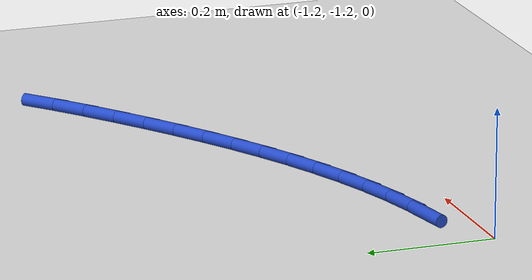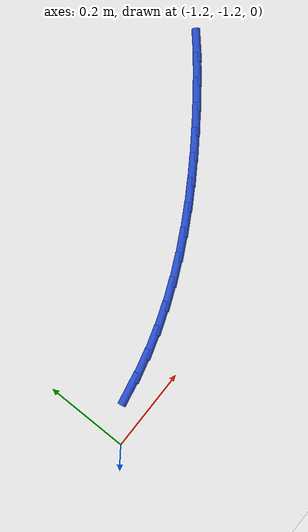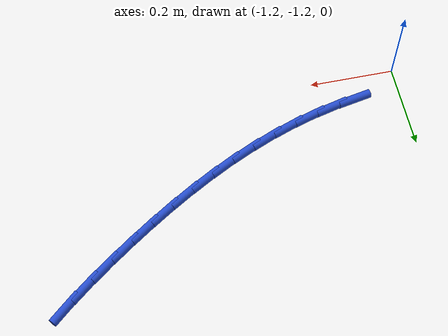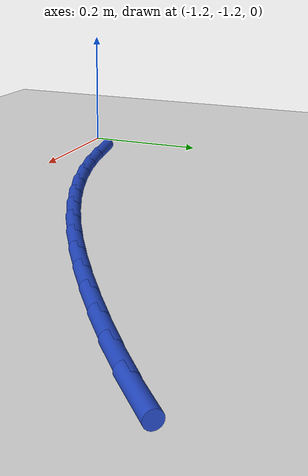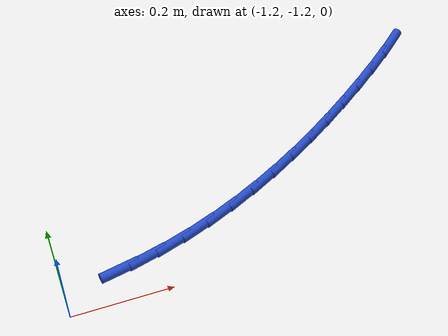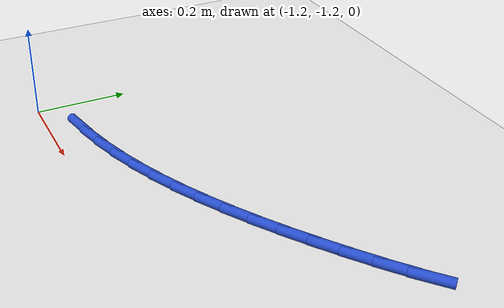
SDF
<sdf version="1.6">
 <world name="default">
  <model name="ground_plane">
   <static>1</static>
   <link name="link">
    <collision name="collision">
     <geometry><plane><normal>0 0 1</normal><size>100 100</size></plane></geometry>
     <surface><friction><ode><mu>100</mu><mu2>50</mu2></ode></friction></surface>
    </collision>
    <visual name="visual">
     <cast_shadows>0</cast_shadows>
     <geometry><plane><normal>0 0 1</normal><size>100 100</size></plane></geometry>
     <material>
      <script><uri>file://media/materials/scripts/gazebo.material</uri><name>Gazebo/WhiteGlow</name></script>
     </material>
    </visual>
   </link>
  </model>
  <model name="line">
   <link name="link_91">
    <pose>-1.0885171950400823 -1.1367272326035065 0.01 0 1.57 0.1902524878991473</pose>
    <collision name="collision">
     <geometry><cylinder><radius>0.01</radius><length>0.08</length></cylinder></geometry>
    </collision>
    <visual name="visual">
     <material>
      <script><name>Gazebo/Blue</name><uri>file://media/materials/scripts/gazebo.material</uri></script>
     </material>
     <geometry><cylinder><radius>0.01</radius><length>0.08</length></cylinder></geometry>
    </visual>
   </link>
   <link name="link_92">
    <pose>-1.0312936778144068 -1.125707031696676 0.01 0 1.57 0.24835167929861915</pose>
    <collision name="collision">
     <geometry><cylinder><radius>0.01</radius><length>0.08</length></cylinder></geometry>
    </collision>
    <visual name="visual">
     <material>
      <script><name>Gazebo/Blue</name><uri>file://media/materials/scripts/gazebo.material</uri></script>
     </material>
     <geometry><cylinder><radius>0.01</radius><length>0.08</length></cylinder></geometry>
    </visual>
   </link>
   <link name="link_93">
    <pose>-0.9750356844994795 -1.1114407433761269 0.01 0 1.57 0.30339828773530986</pose>
    <collision name="collision">
     <geometry><cylinder><radius>0.01</radius><length>0.08</length></cylinder></geometry>
    </collision>
    <visual name="visual">
     <material>
      <script><name>Gazebo/Blue</name><uri>file://media/materials/scripts/gazebo.material</uri></script>
     </material>
     <geometry><cylinder><radius>0.01</radius><length>0.08</length></cylinder></geometry>
    </visual>
   </link>
   <link name="link_94">
    <pose>-0.9197381976370127 -1.0941291103886794 0.01 0 1.57 0.3547704242511538</pose>
    <collision name="collision">
     <geometry><cylinder><radius>0.01</radius><length>0.08</length></cylinder></geometry>
    </collision>
    <visual name="visual">
     <material>
      <script><name>Gazebo/Blue</name><uri>file://media/materials/scripts/gazebo.material</uri></script>
     </material>
     <geometry><cylinder><radius>0.01</radius><length>0.08</length></cylinder></geometry>
    </visual>
   </link>
   <link name="link_95">
    <pose>-0.86537261669424 -1.073989705520375 0.01 0 1.57 0.4023163383633051</pose>
    <collision name="collision">
     <geometry><cylinder><radius>0.01</radius><length>0.08</length></cylinder></geometry>
    </collision>
    <visual name="visual">
     <material>
      <script><name>Gazebo/Blue</name><uri>file://media/materials/scripts/gazebo.material</uri></script>
     </material>
     <geometry><cylinder><radius>0.01</radius><length>0.08</length></cylinder></geometry>
    </visual>
   </link>
   <link name="link_96">
    <pose>-0.811910341138394 -1.051240101557254 0.01 0 1.57 0.4459763623336161</pose>
    <collision name="collision">
     <geometry><cylinder><radius>0.01</radius><length>0.08</length></cylinder></geometry>
    </collision>
    <visual name="visual">
     <material>
      <script><name>Gazebo/Blue</name><uri>file://media/materials/scripts/gazebo.material</uri></script>
     </material>
     <geometry><cylinder><radius>0.01</radius><length>0.08</length></cylinder></geometry>
    </visual>
   </link>
   <link name="link_97">
    <pose>-0.7593227704367107 -1.0260978712853583 0.01 0 1.57 0.48576247722719657</pose>
    <collision name="collision">
     <geometry><cylinder><radius>0.01</radius><length>0.08</length></cylinder></geometry>
    </collision>
    <visual name="visual">
     <material>
      <script><name>Gazebo/Blue</name><uri>file://media/materials/scripts/gazebo.material</uri></script>
     </material>
     <geometry><cylinder><radius>0.01</radius><length>0.08</length></cylinder></geometry>
    </visual>
   </link>
   <link name="link_98">
    <pose>-0.7075813040564226 -0.9987805874907282 0.01 0 1.57 0.5217381426853137</pose>
    <collision name="collision">
     <geometry><cylinder><radius>0.01</radius><length>0.08</length></cylinder></geometry>
    </collision>
    <visual name="visual">
     <material>
      <script><name>Gazebo/Blue</name><uri>file://media/materials/scripts/gazebo.material</uri></script>
     </material>
     <geometry><cylinder><radius>0.01</radius><length>0.08</length></cylinder></geometry>
    </visual>
   </link>
   <link name="link_99">
    <pose>-0.6566573414647644 -0.9695058229594054 0.01 0 1.57 0.5540000505062787</pose>
    <collision name="collision">
     <geometry><cylinder><radius>0.01</radius><length>0.08</length></cylinder></geometry>
    </collision>
    <visual name="visual">
     <material>
      <script><name>Gazebo/Blue</name><uri>file://media/materials/scripts/gazebo.material</uri></script>
     </material>
     <geometry><cylinder><radius>0.01</radius><length>0.08</length></cylinder></geometry>
    </visual>
   </link>
   <link name="link_100">
    <pose>-0.6065222821289686 -0.93849115047743 0.01 0 1.57 0.5826626006327876</pose>
    <collision name="collision">
     <geometry><cylinder><radius>0.01</radius><length>0.08</length></cylinder></geometry>
    </collision>
    <visual name="visual">
     <material>
      <script><name>Gazebo/Blue</name><uri>file://media/materials/scripts/gazebo.material</uri></script>
     </material>
     <geometry><cylinder><radius>0.01</radius><length>0.08</length></cylinder></geometry>
    </visual>
   </link>
   <link name="link_101">
    <pose>-0.5571475255162709 -0.905954142830844 0.01 0 1.57 0.6078452663743164</pose>
    <collision name="collision">
     <geometry><cylinder><radius>0.01</radius><length>0.08</length></cylinder></geometry>
    </collision>
    <visual name="visual">
     <material>
      <script><name>Gazebo/Blue</name><uri>file://media/materials/scripts/gazebo.material</uri></script>
     </material>
     <geometry><cylinder><radius>0.01</radius><length>0.08</length></cylinder></geometry>
    </visual>
   </link>
   <link name="link_102">
    <pose>-0.5085044710939044 -0.8721123728056882 0.01 0 1.57 0.6304147235913931</pose>
    <collision name="collision">
     <geometry><cylinder><radius>0.01</radius><length>0.08</length></cylinder></geometry>
    </collision>
    <visual name="visual">
     <material>
      <script><name>Gazebo/Blue</name><uri>file://media/materials/scripts/gazebo.material</uri></script>
     </material>
     <geometry><cylinder><radius>0.01</radius><length>0.08</length></cylinder></geometry>
    </visual>
   </link>
   <link name="link_103">
    <pose>-0.46059518886959044 -0.8371505685691575 0.01 0 1.57 0.6556512087126072</pose>
    <collision name="collision">
     <geometry><cylinder><radius>0.01</radius><length>0.08</length></cylinder></geometry>
    </collision>
    <visual name="visual">
     <material>
      <script><name>Gazebo/Blue</name><uri>file://media/materials/scripts/gazebo.material</uri></script>
     </material>
     <geometry><cylinder><radius>0.01</radius><length>0.08</length></cylinder></geometry>
    </visual>
   </link>
   <link name="link_104">
    <pose>-0.413631969918657 -0.8010283357203646 0.01 0 1.57 0.6858980581841384</pose>
    <collision name="collision">
     <geometry><cylinder><radius>0.01</radius><length>0.08</length></cylinder></geometry>
    </collision>
    <visual name="visual">
     <material>
      <script><name>Gazebo/Blue</name><uri>file://media/materials/scripts/gazebo.material</uri></script>
     </material>
     <geometry><cylinder><radius>0.01</radius><length>0.08</length></cylinder></geometry>
    </visual>
   </link>
   <link name="link_105">
    <pose>-0.36791525303481565 -0.763610883797372 0.01 0 1.57 0.7213823219095333</pose>
    <collision name="collision">
     <geometry><cylinder><radius>0.01</radius><length>0.08</length></cylinder></geometry>
    </collision>
    <visual name="visual">
     <material>
      <script><name>Gazebo/Blue</name><uri>file://media/materials/scripts/gazebo.material</uri></script>
     </material>
     <geometry><cylinder><radius>0.01</radius><length>0.08</length></cylinder></geometry>
    </visual>
   </link>
  </model>
 </world>
</sdf>
